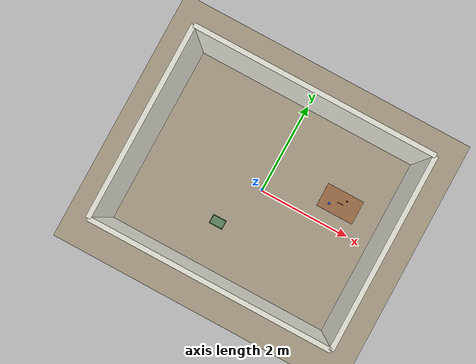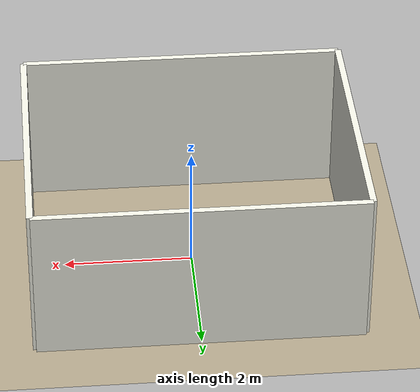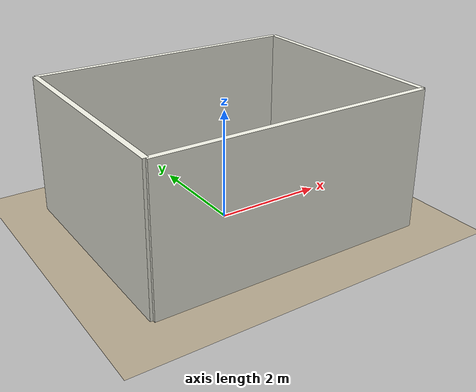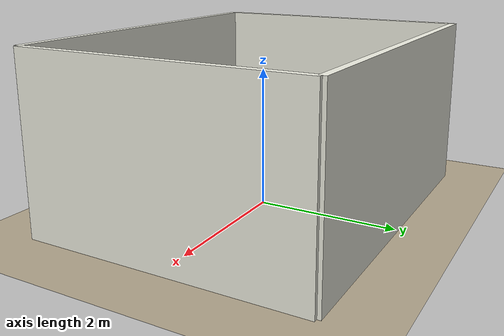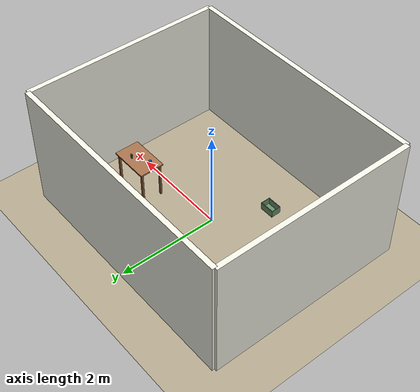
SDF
<?xml version="1.0" ?>
<sdf version="1.8">
  <world name="smart_robot_arm_room">

    <!-- Physics -->
    <physics name="default" type="ode">
      <max_step_size>0.001</max_step_size>
      <real_time_factor>1.0</real_time_factor>
      <real_time_update_rate>1000</real_time_update_rate>
    </physics>

    <!-- Plugins -->
    <plugin filename="gz-sim-physics-system"
            name="gz::sim::systems::Physics"/>
    <plugin filename="gz-sim-user-commands-system"
            name="gz::sim::systems::UserCommands"/>
    <plugin filename="gz-sim-scene-broadcaster-system"
            name="gz::sim::systems::SceneBroadcaster"/>
    <plugin filename="gz-sim-sensors-system"
            name="gz::sim::systems::Sensors">
      <render_engine>ogre2</render_engine>
    </plugin>
    <plugin filename="gz-sim-contact-system"
            name="gz::sim::systems::Contact"/>

    <!-- Lighting -->
    <light type="directional" name="sun">
      <cast_shadows>true</cast_shadows>
      <pose>0 0 10 0 0 0</pose>
      <diffuse>0.8 0.8 0.8 1</diffuse>
      <specular>0.2 0.2 0.2 1</specular>
      <attenuation>
        <range>1000</range>
        <constant>0.9</constant>
        <linear>0.01</linear>
        <quadratic>0.001</quadratic>
      </attenuation>
      <direction>-0.5 0.1 -0.9</direction>
    </light>

    <!-- Ground plane -->
    <model name="ground_plane">
      <static>true</static>
      <link name="link">
        <collision name="collision">
          <geometry>
            <plane>
              <normal>0 0 1</normal>
              <size>20 20</size>
            </plane>
          </geometry>
        </collision>
        <visual name="visual">
          <geometry>
            <plane>
              <normal>0 0 1</normal>
              <size>20 20</size>
            </plane>
          </geometry>
          <material>
            <ambient>0.6 0.55 0.45 1</ambient>
            <diffuse>0.7 0.65 0.55 1</diffuse>
          </material>
        </visual>
      </link>
    </model>

    <!-- ==================== Room Walls ==================== -->
    <!-- Simple rectangular room: 5m x 4m -->

    <!-- North wall -->
    <model name="wall_north">
      <static>true</static>
      <pose>0 2.0 1.25 0 0 0</pose>
      <link name="link">
        <collision name="collision">
          <geometry><box><size>5.0 0.1 2.5</size></box></geometry>
        </collision>
        <visual name="visual">
          <geometry><box><size>5.0 0.1 2.5</size></box></geometry>
          <material>
            <ambient>0.9 0.9 0.85 1</ambient>
            <diffuse>0.95 0.95 0.9 1</diffuse>
          </material>
        </visual>
      </link>
    </model>

    <!-- South wall -->
    <model name="wall_south">
      <static>true</static>
      <pose>0 -2.0 1.25 0 0 0</pose>
      <link name="link">
        <collision name="collision">
          <geometry><box><size>5.0 0.1 2.5</size></box></geometry>
        </collision>
        <visual name="visual">
          <geometry><box><size>5.0 0.1 2.5</size></box></geometry>
          <material>
            <ambient>0.9 0.9 0.85 1</ambient>
            <diffuse>0.95 0.95 0.9 1</diffuse>
          </material>
        </visual>
      </link>
    </model>

    <!-- East wall -->
    <model name="wall_east">
      <static>true</static>
      <pose>2.5 0 1.25 0 0 0</pose>
      <link name="link">
        <collision name="collision">
          <geometry><box><size>0.1 4.0 2.5</size></box></geometry>
        </collision>
        <visual name="visual">
          <geometry><box><size>0.1 4.0 2.5</size></box></geometry>
          <material>
            <ambient>0.9 0.9 0.85 1</ambient>
            <diffuse>0.95 0.95 0.9 1</diffuse>
          </material>
        </visual>
      </link>
    </model>

    <!-- West wall -->
    <model name="wall_west">
      <static>true</static>
      <pose>-2.5 0 1.25 0 0 0</pose>
      <link name="link">
        <collision name="collision">
          <geometry><box><size>0.1 4.0 2.5</size></box></geometry>
        </collision>
        <visual name="visual">
          <geometry><box><size>0.1 4.0 2.5</size></box></geometry>
          <material>
            <ambient>0.9 0.9 0.85 1</ambient>
            <diffuse>0.95 0.95 0.9 1</diffuse>
          </material>
        </visual>
      </link>
    </model>

    <!-- ==================== Furniture ==================== -->

    <!-- Table (where objects will be placed) -->
    <model name="table">
      <static>true</static>
      <pose>1.5 0.5 0 0 0 0</pose>
      <link name="link">
        <!-- Table top -->
        <collision name="top_collision">
          <pose>0 0 0.75 0 0 0</pose>
          <geometry><box><size>0.8 0.5 0.03</size></box></geometry>
        </collision>
        <visual name="top_visual">
          <pose>0 0 0.75 0 0 0</pose>
          <geometry><box><size>0.8 0.5 0.03</size></box></geometry>
          <material>
            <ambient>0.55 0.35 0.2 1</ambient>
            <diffuse>0.65 0.45 0.3 1</diffuse>
          </material>
        </visual>
        <!-- Table legs (4x) -->
        <visual name="leg1">
          <pose>0.35 0.2 0.365 0 0 0</pose>
          <geometry><box><size>0.04 0.04 0.73</size></box></geometry>
          <material><ambient>0.55 0.35 0.2 1</ambient></material>
        </visual>
        <collision name="leg1_col">
          <pose>0.35 0.2 0.365 0 0 0</pose>
          <geometry><box><size>0.04 0.04 0.73</size></box></geometry>
        </collision>
        <visual name="leg2">
          <pose>-0.35 0.2 0.365 0 0 0</pose>
          <geometry><box><size>0.04 0.04 0.73</size></box></geometry>
          <material><ambient>0.55 0.35 0.2 1</ambient></material>
        </visual>
        <collision name="leg2_col">
          <pose>-0.35 0.2 0.365 0 0 0</pose>
          <geometry><box><size>0.04 0.04 0.73</size></box></geometry>
        </collision>
        <visual name="leg3">
          <pose>0.35 -0.2 0.365 0 0 0</pose>
          <geometry><box><size>0.04 0.04 0.73</size></box></geometry>
          <material><ambient>0.55 0.35 0.2 1</ambient></material>
        </visual>
        <collision name="leg3_col">
          <pose>0.35 -0.2 0.365 0 0 0</pose>
          <geometry><box><size>0.04 0.04 0.73</size></box></geometry>
        </collision>
        <visual name="leg4">
          <pose>-0.35 -0.2 0.365 0 0 0</pose>
          <geometry><box><size>0.04 0.04 0.73</size></box></geometry>
          <material><ambient>0.55 0.35 0.2 1</ambient></material>
        </visual>
        <collision name="leg4_col">
          <pose>-0.35 -0.2 0.365 0 0 0</pose>
          <geometry><box><size>0.04 0.04 0.73</size></box></geometry>
        </collision>
      </link>
    </model>

    <!-- ==================== Objects on table ==================== -->

    <!-- Pen (small cylinder) -->
    <model name="pen">
      <pose>1.5 0.5 0.775 0 1.5708 0</pose>
      <link name="link">
        <inertial>
          <mass>0.02</mass>
          <inertia>
            <ixx>0.000001</ixx><iyy>0.000008</iyy><izz>0.000008</izz>
          </inertia>
        </inertial>
        <collision name="collision">
          <geometry><cylinder><radius>0.005</radius><length>0.14</length></cylinder></geometry>
        </collision>
        <visual name="visual">
          <geometry><cylinder><radius>0.005</radius><length>0.14</length></cylinder></geometry>
          <material>
            <ambient>0.8 0.1 0.1 1</ambient>
            <diffuse>0.9 0.15 0.15 1</diffuse>
          </material>
        </visual>
      </link>
    </model>

    <!-- Small cube (toy block) -->
    <model name="cube_toy">
      <pose>1.3 0.4 0.785 0 0 0.3</pose>
      <link name="link">
        <inertial>
          <mass>0.05</mass>
          <inertia>
            <ixx>0.000003</ixx><iyy>0.000003</iyy><izz>0.000003</izz>
          </inertia>
        </inertial>
        <collision name="collision">
          <geometry><box><size>0.04 0.04 0.04</size></box></geometry>
        </collision>
        <visual name="visual">
          <geometry><box><size>0.04 0.04 0.04</size></box></geometry>
          <material>
            <ambient>0.1 0.3 0.8 1</ambient>
            <diffuse>0.15 0.4 0.9 1</diffuse>
          </material>
        </visual>
      </link>
    </model>

    <!-- Remote control -->
    <model name="remote">
      <pose>1.6 0.6 0.78 0 0 0.1</pose>
      <link name="link">
        <inertial>
          <mass>0.08</mass>
          <inertia>
            <ixx>0.000015</ixx><iyy>0.000005</iyy><izz>0.000018</izz>
          </inertia>
        </inertial>
        <collision name="collision">
          <geometry><box><size>0.04 0.02 0.15</size></box></geometry>
        </collision>
        <visual name="visual">
          <geometry><box><size>0.04 0.02 0.15</size></box></geometry>
          <material>
            <ambient>0.15 0.15 0.15 1</ambient>
            <diffuse>0.2 0.2 0.2 1</diffuse>
          </material>
        </visual>
      </link>
    </model>

    <!-- ==================== Storage box (on floor) ==================== -->
    <model name="storage_box">
      <static>true</static>
      <pose>-0.5 -1.0 0 0 0 0</pose>
      <link name="link">
        <!-- Box bottom -->
        <visual name="bottom">
          <pose>0 0 0.005 0 0 0</pose>
          <geometry><box><size>0.3 0.2 0.01</size></box></geometry>
          <material><ambient>0.4 0.55 0.4 1</ambient></material>
        </visual>
        <collision name="bottom_col">
          <pose>0 0 0.005 0 0 0</pose>
          <geometry><box><size>0.3 0.2 0.01</size></box></geometry>
        </collision>
        <!-- Front wall -->
        <visual name="front">
          <pose>0.145 0 0.075 0 0 0</pose>
          <geometry><box><size>0.01 0.2 0.15</size></box></geometry>
          <material><ambient>0.4 0.55 0.4 1</ambient></material>
        </visual>
        <collision name="front_col">
          <pose>0.145 0 0.075 0 0 0</pose>
          <geometry><box><size>0.01 0.2 0.15</size></box></geometry>
        </collision>
        <!-- Back wall -->
        <visual name="back">
          <pose>-0.145 0 0.075 0 0 0</pose>
          <geometry><box><size>0.01 0.2 0.15</size></box></geometry>
          <material><ambient>0.4 0.55 0.4 1</ambient></material>
        </visual>
        <collision name="back_col">
          <pose>-0.145 0 0.075 0 0 0</pose>
          <geometry><box><size>0.01 0.2 0.15</size></box></geometry>
        </collision>
        <!-- Left wall -->
        <visual name="left_wall">
          <pose>0 0.095 0.075 0 0 0</pose>
          <geometry><box><size>0.3 0.01 0.15</size></box></geometry>
          <material><ambient>0.4 0.55 0.4 1</ambient></material>
        </visual>
        <collision name="left_col">
          <pose>0 0.095 0.075 0 0 0</pose>
          <geometry><box><size>0.3 0.01 0.15</size></box></geometry>
        </collision>
        <!-- Right wall -->
        <visual name="right_wall">
          <pose>0 -0.095 0.075 0 0 0</pose>
          <geometry><box><size>0.3 0.01 0.15</size></box></geometry>
          <material><ambient>0.4 0.55 0.4 1</ambient></material>
        </visual>
        <collision name="right_col">
          <pose>0 -0.095 0.075 0 0 0</pose>
          <geometry><box><size>0.3 0.01 0.15</size></box></geometry>
        </collision>
      </link>
    </model>

  </world>
</sdf>
